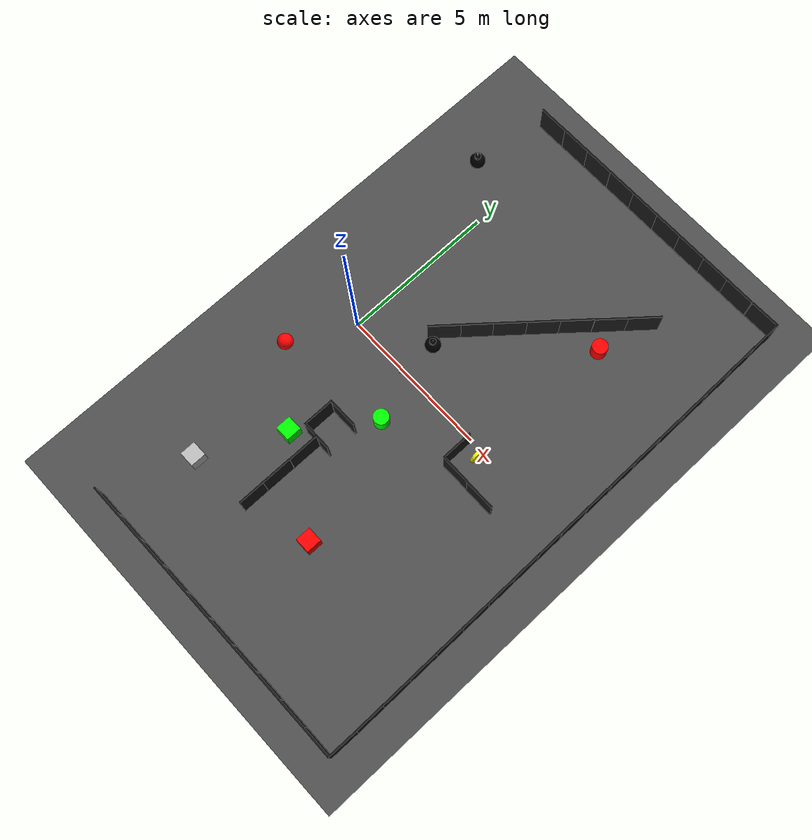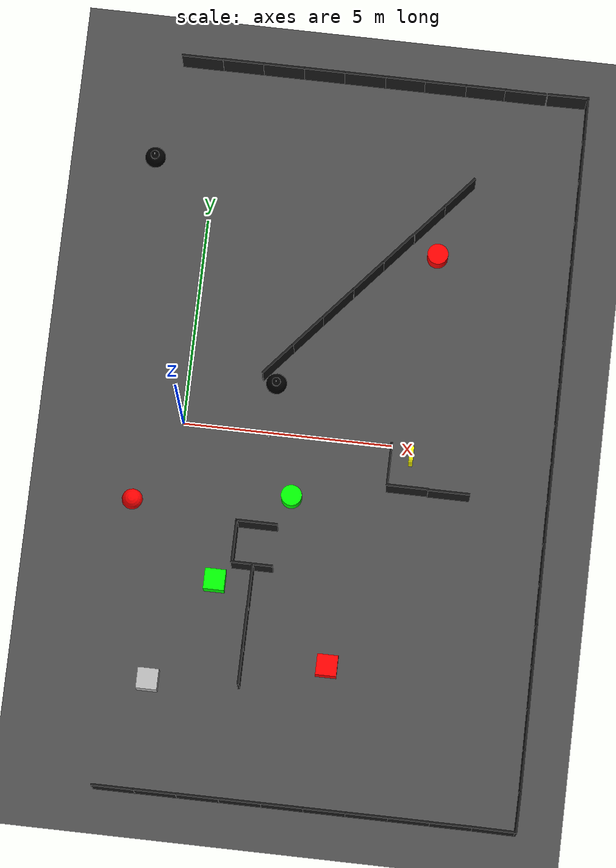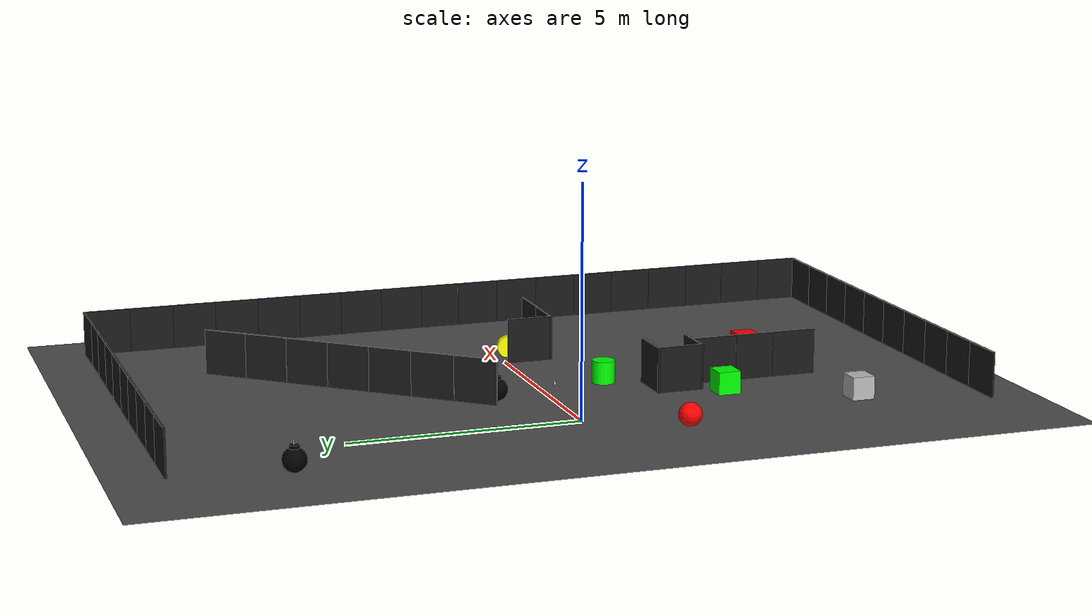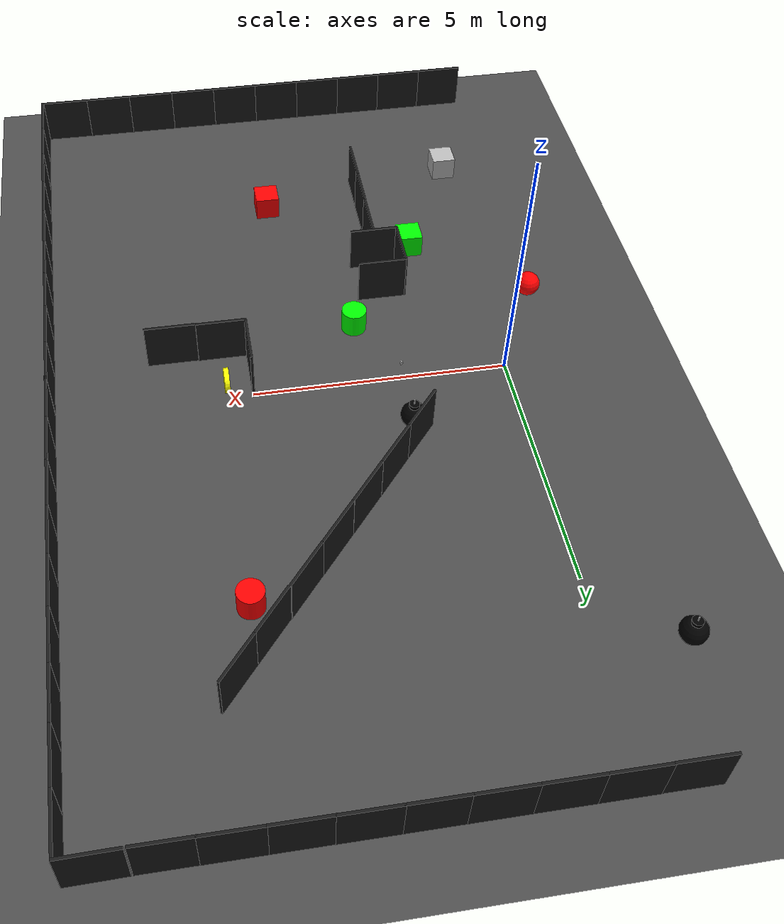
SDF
<sdf version="1.6">
 <world name="default">
  <model name="labrob_ground">
   <static>1</static>
   <link name="link">
    <collision name="collision">
     <geometry><plane><normal>0 0 1</normal><size>20 20</size></plane></geometry>
     <surface><friction><ode><mu>100</mu><mu2>50</mu2></ode></friction></surface>
    </collision>
    <visual name="visual">
     <cast_shadows>0</cast_shadows>
     <geometry><plane><normal>0 0 1</normal><size>20 20</size></plane></geometry>
     <material>
      <script>
       <uri>model://labrob_ground/materials/scripts/</uri>
       <uri>model://labrob_ground/materials/textures/</uri>
       <name>Labrob/AsphaltGround</name>
      </script>
     </material>
    </visual>
   </link>
  </model>
  <model name="cube_red">
   <static>1</static>
   <link name="chassis">
    <pose>0 0 0.25 0 -0 0</pose>
    <collision name="collision"><geometry><box><size>0.5 0.5 0.5</size></box></geometry></collision>
    <visual name="visual">
     <geometry><box><size>0.5 0.5 0.5</size></box></geometry>
     <material>
      <ambient>1 0 0 1</ambient>
      <diffuse>1 0 0 1</diffuse>
      <specular>0.1 0.1 0.1 1</specular>
      <emissive>0 0 0 0</emissive>
     </material>
    </visual>
   </link>
   <pose>4.05938 -5.46614 0 0 -0 0</pose>
  </model>
  <model name="cube_green">
   <static>1</static>
   <link name="chassis">
    <pose>0 0 0.25 0 -0 0</pose>
    <collision name="collision"><geometry><box><size>0.5 0.5 0.5</size></box></geometry></collision>
    <visual name="visual">
     <geometry><box><size>0.5 0.5 0.5</size></box></geometry>
     <material>
      <ambient>0 1 0 1</ambient>
      <diffuse>0 1 0 1</diffuse>
      <specular>0.1 0.1 0.1 1</specular>
      <emissive>0 0 0 0</emissive>
     </material>
    </visual>
   </link>
   <pose>1.18468 -3.72596 0 0 -0 0</pose>
  </model>
  <model name="sphere_red">
   <static>1</static>
   <link name="chassis">
    <pose>0 0 0.25 0 -0 0</pose>
    <collision name="collision"><geometry><sphere><radius>0.25</radius></sphere></geometry></collision>
    <visual name="visual">
     <geometry><sphere><radius>0.25</radius></sphere></geometry>
     <material>
      <ambient>1 0 0 1</ambient>
      <diffuse>1 0 0 1</diffuse>
      <specular>0.1 0.1 0.1 1</specular>
      <emissive>0 0 0 0</emissive>
     </material>
    </visual>
   </link>
   <pose>-1 -2 0 0 -0 0</pose>
  </model>
  <model name="cylinder_red">
   <static>1</static>
   <link name="chassis">
    <pose>0 0 0.25 0 -0 0</pose>
    <collision name="collision">
     <geometry><cylinder><radius>0.25</radius><length>0.5</length></cylinder></geometry>
    </collision>
    <visual name="visual">
     <geometry><cylinder><radius>0.25</radius><length>0.5</length></cylinder></geometry>
     <material>
      <ambient>1 0 0 1</ambient>
      <diffuse>1 0 0 1</diffuse>
      <specular>0.1 0.1 0.1 1</specular>
      <emissive>0 0 0 0</emissive>
     </material>
    </visual>
   </link>
   <pose>5.60269 4.70393 0 0 -0 0</pose>
  </model>
  <model name="cylinder_green">
   <static>1</static>
   <link name="chassis">
    <pose>0 0 0.25 0 -0 0</pose>
    <collision name="collision">
     <geometry><cylinder><radius>0.25</radius><length>0.5</length></cylinder></geometry>
    </collision>
    <visual name="visual">
     <geometry><cylinder><radius>0.25</radius><length>0.5</length></cylinder></geometry>
     <material>
      <ambient>0 1 0 1</ambient>
      <diffuse>0 1 0 1</diffuse>
      <specular>0.1 0.1 0.1 1</specular>
      <emissive>0 0 0 0</emissive>
     </material>
    </visual>
   </link>
   <pose>2.76797 -1.52323 0 0 -0 0</pose>
  </model>
  <model name="aruco_cube">
   <static>1</static>
   <link name="chassis">
    <pose>0 0 0.25 0 -0 0</pose>
    <collision name="collision"><geometry><box><size>0.5 0.5 0.5</size></box></geometry></collision>
    <visual name="visual">
     <geometry><box><size>0.5 0.5 0.5</size></box></geometry>
     <material>
      <script>
       <uri>model://aruco_cube/materials/scripts</uri>
       <uri>model://aruco_cube/materials/textures</uri>
       <name>Aruco/Diffuse</name>
      </script>
     </material>
    </visual>
   </link>
   <pose>-0.117623 -6.25229 0 0 -0 0</pose>
  </model>
  <model name="barrier_1_18_clone_5">
   <static>1</static>
   <link name="chassis">
    <pose>0 0 0.5 0 -0 0</pose>
    <collision name="collision"><geometry><box><size>1 0.05 1</size></box></geometry></collision>
    <visual name="visual">
     <geometry><box><size>1 0.05 1</size></box></geometry>
     <material>
      <ambient>0.1 0.1 0.1 1</ambient>
      <diffuse>0.1 0.1 0.1 1</diffuse>
      <specular>0.1 0.1 0.1 1</specular>
      <emissive>0 0 0 0</emissive>
     </material>
    </visual>
   </link>
   <pose>-0.565924 8.79602 0 0 -0 0</pose>
  </model>
  <model name="barrier_1_18_clone_6">
   <static>1</static>
   <link name="chassis">
    <pose>0 0 0.5 0 -0 0</pose>
    <collision name="collision"><geometry><box><size>1 0.05 1</size></box></geometry></collision>
    <visual name="visual">
     <geometry><box><size>1 0.05 1</size></box></geometry>
     <material>
      <ambient>0.1 0.1 0.1 1</ambient>
      <diffuse>0.1 0.1 0.1 1</diffuse>
      <specular>0.1 0.1 0.1 1</specular>
      <emissive>0 0 0 0</emissive>
     </material>
    </visual>
   </link>
   <pose>0.418427 8.79993 0 0 -0 0</pose>
  </model>
  <model name="barrier_1_18_clone_7">
   <static>1</static>
   <link name="chassis">
    <pose>0 0 0.5 0 -0 0</pose>
    <collision name="collision"><geometry><box><size>1 0.05 1</size></box></geometry></collision>
    <visual name="visual">
     <geometry><box><size>1 0.05 1</size></box></geometry>
     <material>
      <ambient>0.1 0.1 0.1 1</ambient>
      <diffuse>0.1 0.1 0.1 1</diffuse>
      <specular>0.1 0.1 0.1 1</specular>
      <emissive>0 0 0 0</emissive>
     </material>
    </visual>
   </link>
   <pose>1.40717 8.80045 0 0 -0 0</pose>
  </model>
  <model name="barrier_1_18_clone_8">
   <static>1</static>
   <link name="chassis">
    <pose>0 0 0.5 0 -0 0</pose>
    <collision name="collision"><geometry><box><size>1 0.05 1</size></box></geometry></collision>
    <visual name="visual">
     <geometry><box><size>1 0.05 1</size></box></geometry>
     <material>
      <ambient>0.1 0.1 0.1 1</ambient>
      <diffuse>0.1 0.1 0.1 1</diffuse>
      <specular>0.1 0.1 0.1 1</specular>
      <emissive>0 0 0 0</emissive>
     </material>
    </visual>
   </link>
   <pose>2.39968 8.80206 0 0 -0 0</pose>
  </model>
  <model name="barrier_1_18_clone_9">
   <static>1</static>
   <link name="chassis">
    <pose>0 0 0.5 0 -0 0</pose>
    <collision name="collision"><geometry><box><size>1 0.05 1</size></box></geometry></collision>
    <visual name="visual">
     <geometry><box><size>1 0.05 1</size></box></geometry>
     <material>
      <ambient>0.1 0.1 0.1 1</ambient>
      <diffuse>0.1 0.1 0.1 1</diffuse>
      <specular>0.1 0.1 0.1 1</specular>
      <emissive>0 0 0 0</emissive>
     </material>
    </visual>
   </link>
   <pose>3.38938 8.80144 0 0 -0 0</pose>
  </model>
  <model name="barrier_1_18_clone_10">
   <static>1</static>
   <link name="chassis">
    <pose>0 0 0.5 0 -0 0</pose>
    <collision name="collision"><geometry><box><size>1 0.05 1</size></box></geometry></collision>
    <visual name="visual">
     <geometry><box><size>1 0.05 1</size></box></geometry>
     <material>
      <ambient>0.1 0.1 0.1 1</ambient>
      <diffuse>0.1 0.1 0.1 1</diffuse>
      <specular>0.1 0.1 0.1 1</specular>
      <emissive>0 0 0 0</emissive>
     </material>
    </visual>
   </link>
   <pose>4.36187 8.80227 0 0 -0 0</pose>
  </model>
  <model name="barrier_1_18_clone_11">
   <static>1</static>
   <link name="chassis">
    <pose>0 0 0.5 0 -0 0</pose>
    <collision name="collision"><geometry><box><size>1 0.05 1</size></box></geometry></collision>
    <visual name="visual">
     <geometry><box><size>1 0.05 1</size></box></geometry>
     <material>
      <ambient>0.1 0.1 0.1 1</ambient>
      <diffuse>0.1 0.1 0.1 1</diffuse>
      <specular>0.1 0.1 0.1 1</specular>
      <emissive>0 0 0 0</emissive>
     </material>
    </visual>
   </link>
   <pose>5.34049 8.80006 0 0 -0 0</pose>
  </model>
  <model name="barrier_1_18_clone_12">
   <static>1</static>
   <link name="chassis">
    <pose>0 0 0.5 0 -0 0</pose>
    <collision name="collision"><geometry><box><size>1 0.05 1</size></box></geometry></collision>
    <visual name="visual">
     <geometry><box><size>1 0.05 1</size></box></geometry>
     <material>
      <ambient>0.1 0.1 0.1 1</ambient>
      <diffuse>0.1 0.1 0.1 1</diffuse>
      <specular>0.1 0.1 0.1 1</specular>
      <emissive>0 0 0 0</emissive>
     </material>
    </visual>
   </link>
   <pose>6.32592 8.80071 0 0 -0 0</pose>
  </model>
  <model name="barrier_1_19">
   <static>1</static>
   <link name="chassis">
    <pose>0 0 0.5 0 -0 0</pose>
    <collision name="collision"><geometry><box><size>1 0.05 1</size></box></geometry></collision>
    <visual name="visual">
     <geometry><box><size>1 0.05 1</size></box></geometry>
     <material>
      <ambient>0.1 0.1 0.1 1</ambient>
      <diffuse>0.1 0.1 0.1 1</diffuse>
      <specular>0.1 0.1 0.1 1</specular>
      <emissive>0 0 0 0</emissive>
     </material>
    </visual>
   </link>
   <pose>7.28219 8.79827 0 0 -0 0</pose>
  </model>
  <model name="barrier_2_4">
   <static>1</static>
   <link name="chassis">
    <pose>0 0 0.5 0 -0 0</pose>
    <collision name="collision"><geometry><box><size>1 0.05 1</size></box></geometry></collision>
    <visual name="visual">
     <geometry><box><size>1 0.05 1</size></box></geometry>
     <material>
      <ambient>0.1 0.1 0.1 1</ambient>
      <diffuse>0.1 0.1 0.1 1</diffuse>
      <specular>0.1 0.1 0.1 1</specular>
      <emissive>0 0 0 0</emissive>
     </material>
    </visual>
    <collision name="collision2">
     <pose>-0.475 0.525 0 0 -0 1.57</pose>
     <geometry><box><size>1 0.05 1</size></box></geometry>
    </collision>
    <visual name="visual2">
     <pose>-0.475 0.525 0 0 -0 1.57</pose>
     <geometry><box><size>1 0.05 1</size></box></geometry>
     <material>
      <ambient>0.1 0.1 0.1 1</ambient>
      <diffuse>0.1 0.1 0.1 1</diffuse>
      <specular>0.1 0.1 0.1 1</specular>
      <emissive>0 0 0 0</emissive>
     </material>
    </visual>
   </link>
   <pose>8.30821 8.80802 0 0 0 -3.12929</pose>
  </model>
  <model name="barrier_1_20">
   <static>1</static>
   <link name="chassis">
    <pose>0 0 0.5 0 -0 0</pose>
    <collision name="collision"><geometry><box><size>1 0.05 1</size></box></geometry></collision>
    <visual name="visual">
     <geometry><box><size>1 0.05 1</size></box></geometry>
     <material>
      <ambient>0.1 0.1 0.1 1</ambient>
      <diffuse>0.1 0.1 0.1 1</diffuse>
      <specular>0.1 0.1 0.1 1</specular>
      <emissive>0 0 0 0</emissive>
     </material>
    </visual>
   </link>
   <pose>8.79906 7.29147 0 0 -0 1.5774</pose>
  </model>
  <model name="barrier_1_20_clone">
   <static>1</static>
   <link name="chassis">
    <pose>0 0 0.5 0 -0 0</pose>
    <collision name="collision"><geometry><box><size>1 0.05 1</size></box></geometry></collision>
    <visual name="visual">
     <geometry><box><size>1 0.05 1</size></box></geometry>
     <material>
      <ambient>0.1 0.1 0.1 1</ambient>
      <diffuse>0.1 0.1 0.1 1</diffuse>
      <specular>0.1 0.1 0.1 1</specular>
      <emissive>0 0 0 0</emissive>
     </material>
    </visual>
   </link>
   <pose>8.80796 6.30422 0 0 -0 1.5774</pose>
  </model>
  <model name="barrier_1_20_clone_0">
   <static>1</static>
   <link name="chassis">
    <pose>0 0 0.5 0 -0 0</pose>
    <collision name="collision"><geometry><box><size>1 0.05 1</size></box></geometry></collision>
    <visual name="visual">
     <geometry><box><size>1 0.05 1</size></box></geometry>
     <material>
      <ambient>0.1 0.1 0.1 1</ambient>
      <diffuse>0.1 0.1 0.1 1</diffuse>
      <specular>0.1 0.1 0.1 1</specular>
      <emissive>0 0 0 0</emissive>
     </material>
    </visual>
   </link>
   <pose>8.81475 5.30463 0 0 -0 1.5774</pose>
  </model>
  <model name="barrier_1_20_clone_1">
   <static>1</static>
   <link name="chassis">
    <pose>0 0 0.5 0 -0 0</pose>
    <collision name="collision"><geometry><box><size>1 0.05 1</size></box></geometry></collision>
    <visual name="visual">
     <geometry><box><size>1 0.05 1</size></box></geometry>
     <material>
      <ambient>0.1 0.1 0.1 1</ambient>
      <diffuse>0.1 0.1 0.1 1</diffuse>
      <specular>0.1 0.1 0.1 1</specular>
      <emissive>0 0 0 0</emissive>
     </material>
    </visual>
   </link>
   <pose>8.82092 4.30479 0 0 -0 1.5774</pose>
  </model>
  <model name="barrier_1_20_clone_2">
   <static>1</static>
   <link name="chassis">
    <pose>0 0 0.5 0 -0 0</pose>
    <collision name="collision"><geometry><box><size>1 0.05 1</size></box></geometry></collision>
    <visual name="visual">
     <geometry><box><size>1 0.05 1</size></box></geometry>
     <material>
      <ambient>0.1 0.1 0.1 1</ambient>
      <diffuse>0.1 0.1 0.1 1</diffuse>
      <specular>0.1 0.1 0.1 1</specular>
      <emissive>0 0 0 0</emissive>
     </material>
    </visual>
   </link>
   <pose>8.82738 3.30464 0 0 -0 1.5774</pose>
  </model>
  <model name="barrier_1_20_clone_3">
   <static>1</static>
   <link name="chassis">
    <pose>0 0 0.5 0 -0 0</pose>
    <collision name="collision"><geometry><box><size>1 0.05 1</size></box></geometry></collision>
    <visual name="visual">
     <geometry><box><size>1 0.05 1</size></box></geometry>
     <material>
      <ambient>0.1 0.1 0.1 1</ambient>
      <diffuse>0.1 0.1 0.1 1</diffuse>
      <specular>0.1 0.1 0.1 1</specular>
      <emissive>0 0 0 0</emissive>
     </material>
    </visual>
   </link>
   <pose>8.8341 2.30957 0 0 -0 1.5774</pose>
  </model>
  <model name="barrier_1_20_clone_4">
   <static>1</static>
   <link name="chassis">
    <pose>0 0 0.5 0 -0 0</pose>
    <collision name="collision"><geometry><box><size>1 0.05 1</size></box></geometry></collision>
    <visual name="visual">
     <geometry><box><size>1 0.05 1</size></box></geometry>
     <material>
      <ambient>0.1 0.1 0.1 1</ambient>
      <diffuse>0.1 0.1 0.1 1</diffuse>
      <specular>0.1 0.1 0.1 1</specular>
      <emissive>0 0 0 0</emissive>
     </material>
    </visual>
   </link>
   <pose>8.83911 1.31974 0 0 -0 1.5774</pose>
  </model>
  <model name="barrier_1_20_clone_5">
   <static>1</static>
   <link name="chassis">
    <pose>0 0 0.5 0 -0 0</pose>
    <collision name="collision"><geometry><box><size>1 0.05 1</size></box></geometry></collision>
    <visual name="visual">
     <geometry><box><size>1 0.05 1</size></box></geometry>
     <material>
      <ambient>0.1 0.1 0.1 1</ambient>
      <diffuse>0.1 0.1 0.1 1</diffuse>
      <specular>0.1 0.1 0.1 1</specular>
      <emissive>0 0 0 0</emissive>
     </material>
    </visual>
   </link>
   <pose>8.84496 0.320482 0 0 -0 1.5774</pose>
  </model>
  <model name="barrier_1_20_clone_6">
   <static>1</static>
   <link name="chassis">
    <pose>0 0 0.5 0 -0 0</pose>
    <collision name="collision"><geometry><box><size>1 0.05 1</size></box></geometry></collision>
    <visual name="visual">
     <geometry><box><size>1 0.05 1</size></box></geometry>
     <material>
      <ambient>0.1 0.1 0.1 1</ambient>
      <diffuse>0.1 0.1 0.1 1</diffuse>
      <specular>0.1 0.1 0.1 1</specular>
      <emissive>0 0 0 0</emissive>
     </material>
    </visual>
   </link>
   <pose>8.84728 -0.58686 0 0 -0 1.5774</pose>
  </model>
  <model name="barrier_1_20_clone_7">
   <static>1</static>
   <link name="chassis">
    <pose>0 0 0.5 0 -0 0</pose>
    <collision name="collision"><geometry><box><size>1 0.05 1</size></box></geometry></collision>
    <visual name="visual">
     <geometry><box><size>1 0.05 1</size></box></geometry>
     <material>
      <ambient>0.1 0.1 0.1 1</ambient>
      <diffuse>0.1 0.1 0.1 1</diffuse>
      <specular>0.1 0.1 0.1 1</specular>
      <emissive>0 0 0 0</emissive>
     </material>
    </visual>
   </link>
   <pose>8.85207 -1.56694 0 0 -0 1.5774</pose>
  </model>
  <model name="barrier_1_20_clone_8">
   <static>1</static>
   <link name="chassis">
    <pose>0 0 0.5 0 -0 0</pose>
    <collision name="collision"><geometry><box><size>1 0.05 1</size></box></geometry></collision>
    <visual name="visual">
     <geometry><box><size>1 0.05 1</size></box></geometry>
     <material>
      <ambient>0.1 0.1 0.1 1</ambient>
      <diffuse>0.1 0.1 0.1 1</diffuse>
      <specular>0.1 0.1 0.1 1</specular>
      <emissive>0 0 0 0</emissive>
     </material>
    </visual>
   </link>
   <pose>8.85973 -2.55147 0 0 -0 1.5774</pose>
  </model>
  <model name="barrier_1_20_clone_9">
   <static>1</static>
   <link name="chassis">
    <pose>0 0 0.5 0 -0 0</pose>
    <collision name="collision"><geometry><box><size>1 0.05 1</size></box></geometry></collision>
    <visual name="visual">
     <geometry><box><size>1 0.05 1</size></box></geometry>
     <material>
      <ambient>0.1 0.1 0.1 1</ambient>
      <diffuse>0.1 0.1 0.1 1</diffuse>
      <specular>0.1 0.1 0.1 1</specular>
      <emissive>0 0 0 0</emissive>
     </material>
    </visual>
   </link>
   <pose>8.86823 -3.52285 0 0 -0 1.5774</pose>
  </model>
  <model name="barrier_1_20_clone_10">
   <static>1</static>
   <link name="chassis">
    <pose>0 0 0.5 0 -0 0</pose>
    <collision name="collision"><geometry><box><size>1 0.05 1</size></box></geometry></collision>
    <visual name="visual">
     <geometry><box><size>1 0.05 1</size></box></geometry>
     <material>
      <ambient>0.1 0.1 0.1 1</ambient>
      <diffuse>0.1 0.1 0.1 1</diffuse>
      <specular>0.1 0.1 0.1 1</specular>
      <emissive>0 0 0 0</emissive>
     </material>
    </visual>
   </link>
   <pose>8.87802 -4.50707 0 0 -0 1.5774</pose>
  </model>
  <model name="barrier_1_20_clone_11">
   <static>1</static>
   <link name="chassis">
    <pose>0 0 0.5 0 -0 0</pose>
    <collision name="collision"><geometry><box><size>1 0.05 1</size></box></geometry></collision>
    <visual name="visual">
     <geometry><box><size>1 0.05 1</size></box></geometry>
     <material>
      <ambient>0.1 0.1 0.1 1</ambient>
      <diffuse>0.1 0.1 0.1 1</diffuse>
      <specular>0.1 0.1 0.1 1</specular>
      <emissive>0 0 0 0</emissive>
     </material>
    </visual>
   </link>
   <pose>8.88509 -5.50374 0 0 -0 1.5774</pose>
  </model>
  <model name="barrier_1_20_clone_12">
   <static>1</static>
   <link name="chassis">
    <pose>0 0 0.5 0 -0 0</pose>
    <collision name="collision"><geometry><box><size>1 0.05 1</size></box></geometry></collision>
    <visual name="visual">
     <geometry><box><size>1 0.05 1</size></box></geometry>
     <material>
      <ambient>0.1 0.1 0.1 1</ambient>
      <diffuse>0.1 0.1 0.1 1</diffuse>
      <specular>0.1 0.1 0.1 1</specular>
      <emissive>0 0 0 0</emissive>
     </material>
    </visual>
   </link>
   <pose>8.89388 -6.49549 0 0 -0 1.5774</pose>
  </model>
  <model name="barrier_1_20_clone_13">
   <static>1</static>
   <link name="chassis">
    <pose>0 0 0.5 0 -0 0</pose>
    <collision name="collision"><geometry><box><size>1 0.05 1</size></box></geometry></collision>
    <visual name="visual">
     <geometry><box><size>1 0.05 1</size></box></geometry>
     <material>
      <ambient>0.1 0.1 0.1 1</ambient>
      <diffuse>0.1 0.1 0.1 1</diffuse>
      <specular>0.1 0.1 0.1 1</specular>
      <emissive>0 0 0 0</emissive>
     </material>
    </visual>
   </link>
   <pose>8.89962 -7.46788 0 0 -0 1.5774</pose>
  </model>
  <model name="barrier_2_5">
   <static>1</static>
   <link name="chassis">
    <pose>0 0 0.5 0 -0 0</pose>
    <collision name="collision"><geometry><box><size>1 0.05 1</size></box></geometry></collision>
    <visual name="visual">
     <geometry><box><size>1 0.05 1</size></box></geometry>
     <material>
      <ambient>0.1 0.1 0.1 1</ambient>
      <diffuse>0.1 0.1 0.1 1</diffuse>
      <specular>0.1 0.1 0.1 1</specular>
      <emissive>0 0 0 0</emissive>
     </material>
    </visual>
    <collision name="collision2">
     <pose>-0.475 0.525 0 0 -0 1.57</pose>
     <geometry><box><size>1 0.05 1</size></box></geometry>
    </collision>
    <visual name="visual2">
     <pose>-0.475 0.525 0 0 -0 1.57</pose>
     <geometry><box><size>1 0.05 1</size></box></geometry>
     <material>
      <ambient>0.1 0.1 0.1 1</ambient>
      <diffuse>0.1 0.1 0.1 1</diffuse>
      <specular>0.1 0.1 0.1 1</specular>
      <emissive>0 0 0 0</emissive>
     </material>
    </visual>
   </link>
   <pose>8.89974 -8.45646 0 0 -0 1.56067</pose>
  </model>
  <model name="barrier_1_21">
   <static>1</static>
   <link name="chassis">
    <pose>0 0 0.5 0 -0 0</pose>
    <collision name="collision"><geometry><box><size>1 0.05 1</size></box></geometry></collision>
    <visual name="visual">
     <geometry><box><size>1 0.05 1</size></box></geometry>
     <material>
      <ambient>0.1 0.1 0.1 1</ambient>
      <diffuse>0.1 0.1 0.1 1</diffuse>
      <specular>0.1 0.1 0.1 1</specular>
      <emissive>0 0 0 0</emissive>
     </material>
    </visual>
   </link>
   <pose>7.3703 -8.92106 0 0 -0 0</pose>
  </model>
  <model name="barrier_1_21_clone">
   <static>1</static>
   <link name="chassis">
    <pose>0 0 0.5 0 -0 0</pose>
    <collision name="collision"><geometry><box><size>1 0.05 1</size></box></geometry></collision>
    <visual name="visual">
     <geometry><box><size>1 0.05 1</size></box></geometry>
     <material>
      <ambient>0.1 0.1 0.1 1</ambient>
      <diffuse>0.1 0.1 0.1 1</diffuse>
      <specular>0.1 0.1 0.1 1</specular>
      <emissive>0 0 0 0</emissive>
     </material>
    </visual>
   </link>
   <pose>6.37587 -8.91844 0 0 -0 0</pose>
  </model>
  <model name="barrier_1_21_clone_0">
   <static>1</static>
   <link name="chassis">
    <pose>0 0 0.5 0 -0 0</pose>
    <collision name="collision"><geometry><box><size>1 0.05 1</size></box></geometry></collision>
    <visual name="visual">
     <geometry><box><size>1 0.05 1</size></box></geometry>
     <material>
      <ambient>0.1 0.1 0.1 1</ambient>
      <diffuse>0.1 0.1 0.1 1</diffuse>
      <specular>0.1 0.1 0.1 1</specular>
      <emissive>0 0 0 0</emissive>
     </material>
    </visual>
   </link>
   <pose>5.38091 -8.91901 0 0 -0 0</pose>
  </model>
  <model name="barrier_1_21_clone_1">
   <static>1</static>
   <link name="chassis">
    <pose>0 0 0.5 0 -0 0</pose>
    <collision name="collision"><geometry><box><size>1 0.05 1</size></box></geometry></collision>
    <visual name="visual">
     <geometry><box><size>1 0.05 1</size></box></geometry>
     <material>
      <ambient>0.1 0.1 0.1 1</ambient>
      <diffuse>0.1 0.1 0.1 1</diffuse>
      <specular>0.1 0.1 0.1 1</specular>
      <emissive>0 0 0 0</emissive>
     </material>
    </visual>
   </link>
   <pose>4.38412 -8.919 0 0 -0 0</pose>
  </model>
  <model name="barrier_1_21_clone_2">
   <static>1</static>
   <link name="chassis">
    <pose>0 0 0.5 0 -0 0</pose>
    <collision name="collision"><geometry><box><size>1 0.05 1</size></box></geometry></collision>
    <visual name="visual">
     <geometry><box><size>1 0.05 1</size></box></geometry>
     <material>
      <ambient>0.1 0.1 0.1 1</ambient>
      <diffuse>0.1 0.1 0.1 1</diffuse>
      <specular>0.1 0.1 0.1 1</specular>
      <emissive>0 0 0 0</emissive>
     </material>
    </visual>
   </link>
   <pose>3.3874 -8.91868 0 0 -0 0</pose>
  </model>
  <model name="barrier_1_21_clone_3">
   <static>1</static>
   <link name="chassis">
    <pose>0 0 0.5 0 -0 0</pose>
    <collision name="collision"><geometry><box><size>1 0.05 1</size></box></geometry></collision>
    <visual name="visual">
     <geometry><box><size>1 0.05 1</size></box></geometry>
     <material>
      <ambient>0.1 0.1 0.1 1</ambient>
      <diffuse>0.1 0.1 0.1 1</diffuse>
      <specular>0.1 0.1 0.1 1</specular>
      <emissive>0 0 0 0</emissive>
     </material>
    </visual>
   </link>
   <pose>2.39009 -8.91902 0 0 -0 0</pose>
  </model>
  <model name="barrier_1_21_clone_4">
   <static>1</static>
   <link name="chassis">
    <pose>0 0 0.5 0 -0 0</pose>
    <collision name="collision"><geometry><box><size>1 0.05 1</size></box></geometry></collision>
    <visual name="visual">
     <geometry><box><size>1 0.05 1</size></box></geometry>
     <material>
      <ambient>0.1 0.1 0.1 1</ambient>
      <diffuse>0.1 0.1 0.1 1</diffuse>
      <specular>0.1 0.1 0.1 1</specular>
      <emissive>0 0 0 0</emissive>
     </material>
    </visual>
   </link>
   <pose>1.3925 -8.92038 0 0 -0 0</pose>
  </model>
  <model name="barrier_1_21_clone_5">
   <static>1</static>
   <link name="chassis">
    <pose>0 0 0.5 0 -0 0</pose>
    <collision name="collision"><geometry><box><size>1 0.05 1</size></box></geometry></collision>
    <visual name="visual">
     <geometry><box><size>1 0.05 1</size></box></geometry>
     <material>
      <ambient>0.1 0.1 0.1 1</ambient>
      <diffuse>0.1 0.1 0.1 1</diffuse>
      <specular>0.1 0.1 0.1 1</specular>
      <emissive>0 0 0 0</emissive>
     </material>
    </visual>
   </link>
   <pose>0.392966 -8.92228 0 0 -0 0</pose>
  </model>
  <model name="barrier_1_21_clone_6">
   <static>1</static>
   <link name="chassis">
    <pose>0 0 0.5 0 -0 0</pose>
    <collision name="collision"><geometry><box><size>1 0.05 1</size></box></geometry></collision>
    <visual name="visual">
     <geometry><box><size>1 0.05 1</size></box></geometry>
     <material>
      <ambient>0.1 0.1 0.1 1</ambient>
      <diffuse>0.1 0.1 0.1 1</diffuse>
      <specular>0.1 0.1 0.1 1</specular>
      <emissive>0 0 0 0</emissive>
     </material>
    </visual>
   </link>
   <pose>-0.5994 -8.92388 0 0 -0 0</pose>
  </model>
  <model name="barrier_1_26">
   <static>1</static>
   <link name="chassis">
    <pose>0 0 0.5 0 -0 0</pose>
    <collision name="collision"><geometry><box><size>1 0.05 1</size></box></geometry></collision>
    <visual name="visual">
     <geometry><box><size>1 0.05 1</size></box></geometry>
     <material>
      <ambient>0.1 0.1 0.1 1</ambient>
      <diffuse>0.1 0.1 0.1 1</diffuse>
      <specular>0.1 0.1 0.1 1</specular>
      <emissive>0 0 0 0</emissive>
     </material>
    </visual>
   </link>
   <pose>5.31402 5.39519 0 0 -0 0.863922</pose>
  </model>
  <model name="barrier_1_26_clone">
   <static>1</static>
   <link name="chassis">
    <pose>0 0 0.5 0 -0 0</pose>
    <collision name="collision"><geometry><box><size>1 0.05 1</size></box></geometry></collision>
    <visual name="visual">
     <geometry><box><size>1 0.05 1</size></box></geometry>
     <material>
      <ambient>0.1 0.1 0.1 1</ambient>
      <diffuse>0.1 0.1 0.1 1</diffuse>
      <specular>0.1 0.1 0.1 1</specular>
      <emissive>0 0 0 0</emissive>
     </material>
    </visual>
   </link>
   <pose>5.96408 6.15472 0 0 -0 0.863922</pose>
  </model>
  <model name="barrier_1_26_clone_0">
   <static>1</static>
   <link name="chassis">
    <pose>0 0 0.5 0 -0 0</pose>
    <collision name="collision"><geometry><box><size>1 0.05 1</size></box></geometry></collision>
    <visual name="visual">
     <geometry><box><size>1 0.05 1</size></box></geometry>
     <material>
      <ambient>0.1 0.1 0.1 1</ambient>
      <diffuse>0.1 0.1 0.1 1</diffuse>
      <specular>0.1 0.1 0.1 1</specular>
      <emissive>0 0 0 0</emissive>
     </material>
    </visual>
   </link>
   <pose>4.65276 4.63694 0 0 -0 0.863922</pose>
  </model>
  <model name="barrier_1_26_clone_1">
   <static>1</static>
   <link name="chassis">
    <pose>0 0 0.5 0 -0 0</pose>
    <collision name="collision"><geometry><box><size>1 0.05 1</size></box></geometry></collision>
    <visual name="visual">
     <geometry><box><size>1 0.05 1</size></box></geometry>
     <material>
      <ambient>0.1 0.1 0.1 1</ambient>
      <diffuse>0.1 0.1 0.1 1</diffuse>
      <specular>0.1 0.1 0.1 1</specular>
      <emissive>0 0 0 0</emissive>
     </material>
    </visual>
   </link>
   <pose>4.00487 3.88436 0 0 -0 0.863922</pose>
  </model>
  <model name="barrier_1_26_clone_2">
   <static>1</static>
   <link name="chassis">
    <pose>0 0 0.5 0 -0 0</pose>
    <collision name="collision"><geometry><box><size>1 0.05 1</size></box></geometry></collision>
    <visual name="visual">
     <geometry><box><size>1 0.05 1</size></box></geometry>
     <material>
      <ambient>0.1 0.1 0.1 1</ambient>
      <diffuse>0.1 0.1 0.1 1</diffuse>
      <specular>0.1 0.1 0.1 1</specular>
      <emissive>0 0 0 0</emissive>
     </material>
    </visual>
   </link>
   <pose>3.35699 3.12984 0 0 -0 0.863922</pose>
  </model>
  <model name="barrier_1_26_clone_3">
   <static>1</static>
   <link name="chassis">
    <pose>0 0 0.5 0 -0 0</pose>
    <collision name="collision"><geometry><box><size>1 0.05 1</size></box></geometry></collision>
    <visual name="visual">
     <geometry><box><size>1 0.05 1</size></box></geometry>
     <material>
      <ambient>0.1 0.1 0.1 1</ambient>
      <diffuse>0.1 0.1 0.1 1</diffuse>
      <specular>0.1 0.1 0.1 1</specular>
      <emissive>0 0 0 0</emissive>
     </material>
    </visual>
   </link>
   <pose>2.71252 2.37758 0 0 -0 0.863922</pose>
  </model>
  <model name="barrier_1_26_clone_4">
   <static>1</static>
   <link name="chassis">
    <pose>0 0 0.5 0 -0 0</pose>
    <collision name="collision"><geometry><box><size>1 0.05 1</size></box></geometry></collision>
    <visual name="visual">
     <geometry><box><size>1 0.05 1</size></box></geometry>
     <material>
      <ambient>0.1 0.1 0.1 1</ambient>
      <diffuse>0.1 0.1 0.1 1</diffuse>
      <specular>0.1 0.1 0.1 1</specular>
      <emissive>0 0 0 0</emissive>
     </material>
    </visual>
   </link>
   <pose>2.08098 1.63529 0 0 -0 0.863922</pose>
  </model>
  <model name="barrier_3_2">
   <static>1</static>
   <link name="chassis">
    <pose>0 0 0.5 0 -0 0</pose>
    <collision name="collision"><geometry><box><size>1 0.05 1</size></box></geometry></collision>
    <visual name="visual">
     <geometry><box><size>1 0.05 1</size></box></geometry>
     <material>
      <ambient>0.1 0.1 0.1 1</ambient>
      <diffuse>0.1 0.1 0.1 1</diffuse>
      <specular>0.1 0.1 0.1 1</specular>
      <emissive>0 0 0 0</emissive>
     </material>
    </visual>
    <collision name="collision2">
     <pose>-0.475 0.525 0 0 -0 1.57</pose>
     <geometry><box><size>1 0.05 1</size></box></geometry>
    </collision>
    <visual name="visual2">
     <pose>-0.475 0.525 0 0 -0 1.57</pose>
     <geometry><box><size>1 0.05 1</size></box></geometry>
     <material>
      <ambient>0.1 0.1 0.1 1</ambient>
      <diffuse>0.1 0.1 0.1 1</diffuse>
      <specular>0.1 0.1 0.1 1</specular>
      <emissive>0 0 0 0</emissive>
     </material>
    </visual>
    <collision name="collision3">
     <pose>0 1 0 0 -0 0</pose>
     <geometry><box><size>1 0.05 1</size></box></geometry>
    </collision>
    <visual name="visual3">
     <pose>0 1 0 0 -0 0</pose>
     <geometry><box><size>1 0.05 1</size></box></geometry>
     <material>
      <ambient>0.1 0.1 0.1 1</ambient>
      <diffuse>0.1 0.1 0.1 1</diffuse>
      <specular>0.1 0.1 0.1 1</specular>
      <emissive>0 0 0 0</emissive>
     </material>
    </visual>
   </link>
   <pose>2.03403 -3.33058 0 0 -0 0</pose>
  </model>
  <model name="barrier_1_28">
   <static>1</static>
   <link name="chassis">
    <pose>0 0 0.5 0 -0 0</pose>
    <collision name="collision"><geometry><box><size>1 0.05 1</size></box></geometry></collision>
    <visual name="visual">
     <geometry><box><size>1 0.05 1</size></box></geometry>
     <material>
      <ambient>0.1 0.1 0.1 1</ambient>
      <diffuse>0.1 0.1 0.1 1</diffuse>
      <specular>0.1 0.1 0.1 1</specular>
      <emissive>0 0 0 0</emissive>
     </material>
    </visual>
   </link>
   <pose>2.0531 -3.85202 0 0 -0 1.57075</pose>
  </model>
  <model name="barrier_1_28_clone">
   <static>1</static>
   <link name="chassis">
    <pose>0 0 0.5 0 -0 0</pose>
    <collision name="collision"><geometry><box><size>1 0.05 1</size></box></geometry></collision>
    <visual name="visual">
     <geometry><box><size>1 0.05 1</size></box></geometry>
     <material>
      <ambient>0.1 0.1 0.1 1</ambient>
      <diffuse>0.1 0.1 0.1 1</diffuse>
      <specular>0.1 0.1 0.1 1</specular>
      <emissive>0 0 0 0</emissive>
     </material>
    </visual>
   </link>
   <pose>2.04653 -4.84533 0 0 -0 1.57075</pose>
  </model>
  <model name="barrier_1_28_clone_0">
   <static>1</static>
   <link name="chassis">
    <pose>0 0 0.5 0 -0 0</pose>
    <collision name="collision"><geometry><box><size>1 0.05 1</size></box></geometry></collision>
    <visual name="visual">
     <geometry><box><size>1 0.05 1</size></box></geometry>
     <material>
      <ambient>0.1 0.1 0.1 1</ambient>
      <diffuse>0.1 0.1 0.1 1</diffuse>
      <specular>0.1 0.1 0.1 1</specular>
      <emissive>0 0 0 0</emissive>
     </material>
    </visual>
   </link>
   <pose>2.04471 -5.71404 0 0 -0 1.57075</pose>
  </model>
  <model name="barrier_2_11">
   <static>1</static>
   <link name="chassis">
    <pose>0 0 0.5 0 -0 0</pose>
    <collision name="collision"><geometry><box><size>1 0.05 1</size></box></geometry></collision>
    <visual name="visual">
     <geometry><box><size>1 0.05 1</size></box></geometry>
     <material>
      <ambient>0.1 0.1 0.1 1</ambient>
      <diffuse>0.1 0.1 0.1 1</diffuse>
      <specular>0.1 0.1 0.1 1</specular>
      <emissive>0 0 0 0</emissive>
     </material>
    </visual>
    <collision name="collision2">
     <pose>-0.475 0.525 0 0 -0 1.57</pose>
     <geometry><box><size>1 0.05 1</size></box></geometry>
    </collision>
    <visual name="visual2">
     <pose>-0.475 0.525 0 0 -0 1.57</pose>
     <geometry><box><size>1 0.05 1</size></box></geometry>
     <material>
      <ambient>0.1 0.1 0.1 1</ambient>
      <diffuse>0.1 0.1 0.1 1</diffuse>
      <specular>0.1 0.1 0.1 1</specular>
      <emissive>0 0 0 0</emissive>
     </material>
    </visual>
   </link>
   <pose>5.47818 -1.09697 0 0 -0 0</pose>
  </model>
  <model name="barrier_1_29">
   <static>1</static>
   <link name="chassis">
    <pose>0 0 0.5 0 -0 0</pose>
    <collision name="collision"><geometry><box><size>1 0.05 1</size></box></geometry></collision>
    <visual name="visual">
     <geometry><box><size>1 0.05 1</size></box></geometry>
     <material>
      <ambient>0.1 0.1 0.1 1</ambient>
      <diffuse>0.1 0.1 0.1 1</diffuse>
      <specular>0.1 0.1 0.1 1</specular>
      <emissive>0 0 0 0</emissive>
     </material>
    </visual>
   </link>
   <pose>6.48204 -1.10917 0 0 -0 0</pose>
  </model>
  <model name="bomb_0">
   <static>1</static>
   <link name="chassis">
    <pose>0 0 0.25 0 -0 0</pose>
    <visual name="visual">
     <pose>0 0 0.2 0 -0 0</pose>
     <geometry><cylinder><radius>0.1</radius><length>0.2</length></cylinder></geometry>
     <material>
      <ambient>0 0 0 1</ambient>
      <diffuse>0 0 0 1</diffuse>
      <specular>0.1 0.1 0.1 1</specular>
      <emissive>0 0 0 0</emissive>
     </material>
    </visual>
    <visual name="visual2">
     <geometry><sphere><radius>0.25</radius></sphere></geometry>
     <material>
      <ambient>0 0 0 1</ambient>
      <diffuse>0 0 0 1</diffuse>
      <specular>0.1 0.1 0.1 1</specular>
      <emissive>0 0 0 0</emissive>
     </material>
    </visual>
    <visual name="visual3">
     <pose>0 0 0.3 0 -0 0</pose>
     <geometry><cylinder><radius>0.01</radius><length>0.2</length></cylinder></geometry>
     <material>
      <ambient>1 1 1 1</ambient>
      <diffuse>1 1 1 1</diffuse>
      <specular>0.1 0.1 0.1 1</specular>
      <emissive>0 0 0 0</emissive>
     </material>
    </visual>
   </link>
   <pose>-1.45037 6.38078 0 0 -0 0</pose>
  </model>
  <model name="bomb_1">
   <static>1</static>
   <link name="chassis">
    <pose>0 0 0.25 0 -0 0</pose>
    <visual name="visual">
     <pose>0 0 0.2 0 -0 0</pose>
     <geometry><cylinder><radius>0.1</radius><length>0.2</length></cylinder></geometry>
     <material>
      <ambient>0 0 0 1</ambient>
      <diffuse>0 0 0 1</diffuse>
      <specular>0.1 0.1 0.1 1</specular>
      <emissive>0 0 0 0</emissive>
     </material>
    </visual>
    <visual name="visual2">
     <geometry><sphere><radius>0.25</radius></sphere></geometry>
     <material>
      <ambient>0 0 0 1</ambient>
      <diffuse>0 0 0 1</diffuse>
      <specular>0.1 0.1 0.1 1</specular>
      <emissive>0 0 0 0</emissive>
     </material>
    </visual>
    <visual name="visual3">
     <pose>0 0 0.3 0 -0 0</pose>
     <geometry><cylinder><radius>0.01</radius><length>0.2</length></cylinder></geometry>
     <material>
      <ambient>1 1 1 1</ambient>
      <diffuse>1 1 1 1</diffuse>
      <specular>0.1 0.1 0.1 1</specular>
      <emissive>0 0 0 0</emissive>
     </material>
    </visual>
   </link>
   <pose>2.09825 1.16199 0 0 -0 0</pose>
  </model>
  <model name="coin_1">
   <static>1</static>
   <link name="chassis">
    <pose>0 0 0.25 0 -0 0</pose>
    <visual name="visual">
     <pose>0 0 0 0 1.57 0</pose>
     <geometry><cylinder><radius>0.25</radius><length>0.1</length></cylinder></geometry>
     <material>
      <ambient>1 1 0 1</ambient>
      <diffuse>1 1 0 1</diffuse>
      <specular>0.1 0.1 0.1 1</specular>
      <emissive>0 0 0 0</emissive>
     </material>
    </visual>
   </link>
   <pose>5.49648 -0.230275 0 0 -0 0</pose>
  </model>
  <model name="hokuyo">
   <pose>2.06552 -0.150668 0.282483 9e-05 3.3e-05 -0.022571</pose>
   <link name="link">
    <inertial>
     <mass>0.1</mass>
     <inertia><ixx>1</ixx><ixy>0</ixy><ixz>0</ixz><iyy>1</iyy><iyz>0</iyz><izz>1</izz></inertia>
    </inertial>
    <visual name="visual"><geometry><mesh><uri>model://hokuyo/meshes/hokuyo.dae</uri></mesh></geometry></visual>
    <collision name="collision-base">
     <pose>0 0 -0.0145 0 -0 0</pose>
     <geometry><box><size>0.05 0.05 0.041</size></box></geometry>
    </collision>
    <collision name="collision-top">
     <pose>0 0 0.0205 0 -0 0</pose>
     <geometry><cylinder><radius>0.021</radius><length>0.029</length></cylinder></geometry>
    </collision>
    <sensor name="laser" type="ray">
     <pose>0.01 0 0.0175 0 -0 0</pose>
     <ray>
      <scan>
       <horizontal>
        <samples>640</samples>
        <resolution>1</resolution>
        <min_angle>-2.26889</min_angle>
        <max_angle>2.2689</max_angle>
       </horizontal>
       <vertical><samples>1</samples><min_angle>0</min_angle><max_angle>0</max_angle></vertical>
      </scan>
      <range><min>0.08</min><max>10</max><resolution>0.01</resolution></range>
     </ray>
     <plugin name="laser" filename="libRayPlugin.so"/>
     <always_on>1</always_on>
     <update_rate>30</update_rate>
     <visualize>1</visualize>
    </sensor>
   </link>
  </model>
 </world>
</sdf>
